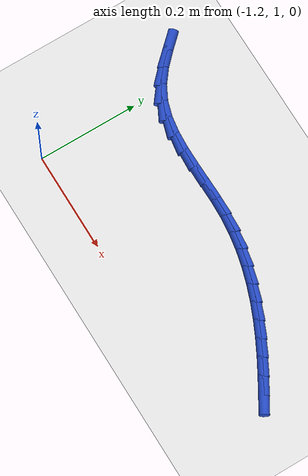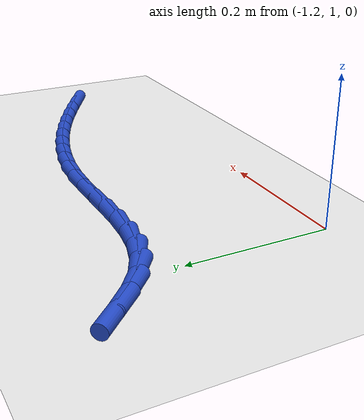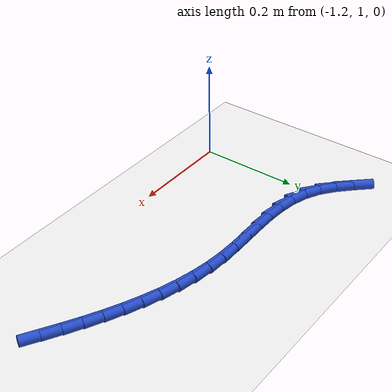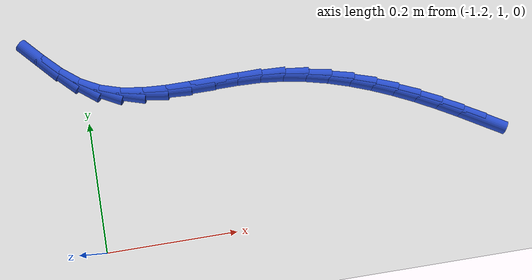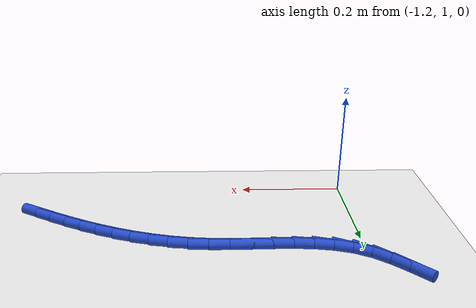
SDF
<sdf version="1.6">
 <world name="default">
  <model name="ground_plane">
   <static>1</static>
   <link name="link">
    <collision name="collision">
     <geometry><plane><normal>0 0 1</normal><size>100 100</size></plane></geometry>
     <surface><friction><ode><mu>100</mu><mu2>50</mu2></ode></friction></surface>
    </collision>
    <visual name="visual">
     <cast_shadows>0</cast_shadows>
     <geometry><plane><normal>0 0 1</normal><size>100 100</size></plane></geometry>
     <material>
      <script><uri>file://media/materials/scripts/gazebo.material</uri><name>Gazebo/WhiteGlow</name></script>
     </material>
    </visual>
   </link>
  </model>
  <model name="line">
   <link name="link_39">
    <pose>-0.6037062262293262 1.1102892742485995 0.01 0 1.57 -0.5329822296605902</pose>
    <collision name="collision">
     <geometry><cylinder><radius>0.01</radius><length>0.08</length></cylinder></geometry>
    </collision>
    <visual name="visual">
     <material>
      <script><name>Gazebo/Blue</name><uri>file://media/materials/scripts/gazebo.material</uri></script>
     </material>
     <geometry><cylinder><radius>0.01</radius><length>0.08</length></cylinder></geometry>
    </visual>
   </link>
   <link name="link_40">
    <pose>-0.6341459280985905 1.1282465694600792 0.01 0 1.57 -0.5097433400999187</pose>
    <collision name="collision">
     <geometry><cylinder><radius>0.01</radius><length>0.08</length></cylinder></geometry>
    </collision>
    <visual name="visual">
     <material>
      <script><name>Gazebo/Blue</name><uri>file://media/materials/scripts/gazebo.material</uri></script>
     </material>
     <geometry><cylinder><radius>0.01</radius><length>0.08</length></cylinder></geometry>
    </visual>
   </link>
   <link name="link_41">
    <pose>-0.6647988493821662 1.1453822206851383 0.01 0 1.57 -0.4802701674608907</pose>
    <collision name="collision">
     <geometry><cylinder><radius>0.01</radius><length>0.08</length></cylinder></geometry>
    </collision>
    <visual name="visual">
     <material>
      <script><name>Gazebo/Blue</name><uri>file://media/materials/scripts/gazebo.material</uri></script>
     </material>
     <geometry><cylinder><radius>0.01</radius><length>0.08</length></cylinder></geometry>
    </visual>
   </link>
   <link name="link_42">
    <pose>-0.6957480626921826 1.1615053459757465 0.01 0 1.57 -0.44445425658547955</pose>
    <collision name="collision">
     <geometry><cylinder><radius>0.01</radius><length>0.08</length></cylinder></geometry>
    </collision>
    <visual name="visual">
     <material>
      <script><name>Gazebo/Blue</name><uri>file://media/materials/scripts/gazebo.material</uri></script>
     </material>
     <geometry><cylinder><radius>0.01</radius><length>0.08</length></cylinder></geometry>
    </visual>
   </link>
   <link name="link_43">
    <pose>-0.7270766406407698 1.1764250633838707 0.01 0 1.57 -0.40225014596360037</pose>
    <collision name="collision">
     <geometry><cylinder><radius>0.01</radius><length>0.08</length></cylinder></geometry>
    </collision>
    <visual name="visual">
     <material>
      <script><name>Gazebo/Blue</name><uri>file://media/materials/scripts/gazebo.material</uri></script>
     </material>
     <geometry><cylinder><radius>0.01</radius><length>0.08</length></cylinder></geometry>
    </visual>
   </link>
   <link name="link_44">
    <pose>-0.758867655840057 1.18995049096148 0.01 0 1.57 -0.35371990406697174</pose>
    <collision name="collision">
     <geometry><cylinder><radius>0.01</radius><length>0.08</length></cylinder></geometry>
    </collision>
    <visual name="visual">
     <material>
      <script><name>Gazebo/Blue</name><uri>file://media/materials/scripts/gazebo.material</uri></script>
     </material>
     <geometry><cylinder><radius>0.01</radius><length>0.08</length></cylinder></geometry>
    </visual>
   </link>
   <link name="link_45">
    <pose>-0.7912041809021746 1.2018907467605422 0.01 0 1.57 -0.2990833196702616</pose>
    <collision name="collision">
     <geometry><cylinder><radius>0.01</radius><length>0.08</length></cylinder></geometry>
    </collision>
    <visual name="visual">
     <material>
      <script><name>Gazebo/Blue</name><uri>file://media/materials/scripts/gazebo.material</uri></script>
     </material>
     <geometry><cylinder><radius>0.01</radius><length>0.08</length></cylinder></geometry>
    </visual>
   </link>
   <link name="link_46">
    <pose>-0.8241692884392514 1.2120549488330252 0.01 0 1.57 -0.2387669150535141</pose>
    <collision name="collision">
     <geometry><cylinder><radius>0.01</radius><length>0.08</length></cylinder></geometry>
    </collision>
    <visual name="visual">
     <material>
      <script><name>Gazebo/Blue</name><uri>file://media/materials/scripts/gazebo.material</uri></script>
     </material>
     <geometry><cylinder><radius>0.01</radius><length>0.08</length></cylinder></geometry>
    </visual>
   </link>
   <link name="link_47">
    <pose>-0.8578460510634178 1.2202522152308977 0.01 0 1.57 -0.17344094599628823</pose>
    <collision name="collision">
     <geometry><cylinder><radius>0.01</radius><length>0.08</length></cylinder></geometry>
    </collision>
    <visual name="visual">
     <material>
      <script><name>Gazebo/Blue</name><uri>file://media/materials/scripts/gazebo.material</uri></script>
     </material>
     <geometry><cylinder><radius>0.01</radius><length>0.08</length></cylinder></geometry>
    </visual>
   </link>
   <link name="link_48">
    <pose>-0.8923175413868033 1.2262916640061274 0.01 0 1.57 -0.10403109041895171</pose>
    <collision name="collision">
     <geometry><cylinder><radius>0.01</radius><length>0.08</length></cylinder></geometry>
    </collision>
    <visual name="visual">
     <material>
      <script><name>Gazebo/Blue</name><uri>file://media/materials/scripts/gazebo.material</uri></script>
     </material>
     <geometry><cylinder><radius>0.01</radius><length>0.08</length></cylinder></geometry>
    </visual>
   </link>
   <link name="link_49">
    <pose>-0.9276668320215371 1.2299824132106827 0.01 0 1.57 -0.03492770932390305</pose>
    <collision name="collision">
     <geometry><cylinder><radius>0.01</radius><length>0.08</length></cylinder></geometry>
    </collision>
    <visual name="visual">
     <material>
      <script><name>Gazebo/Blue</name><uri>file://media/materials/scripts/gazebo.material</uri></script>
     </material>
     <geometry><cylinder><radius>0.01</radius><length>0.08</length></cylinder></geometry>
    </visual>
   </link>
   <link name="link_50">
    <pose>-0.9639287901547265 1.2312494756345558 0.01 0 1.57 0.00949308391064835</pose>
    <collision name="collision">
     <geometry><cylinder><radius>0.01</radius><length>0.08</length></cylinder></geometry>
    </collision>
    <visual name="visual">
     <material>
      <script><name>Gazebo/Blue</name><uri>file://media/materials/scripts/gazebo.material</uri></script>
     </material>
     <geometry><cylinder><radius>0.01</radius><length>0.08</length></cylinder></geometry>
    </visual>
   </link>
   <link name="link_51">
    <pose>-1.000771484897298 1.230899714335136 0.01 0 1.57 0.02042746529366963</pose>
    <collision name="collision">
     <geometry><cylinder><radius>0.01</radius><length>0.08</length></cylinder></geometry>
    </collision>
    <visual name="visual">
     <material>
      <script><name>Gazebo/Blue</name><uri>file://media/materials/scripts/gazebo.material</uri></script>
     </material>
     <geometry><cylinder><radius>0.01</radius><length>0.08</length></cylinder></geometry>
    </visual>
   </link>
   <link name="link_52">
    <pose>-1.0376943726680934 1.2301453683989096 0.01 0 1.57 -0.0015190542157227352</pose>
    <collision name="collision">
     <geometry><cylinder><radius>0.01</radius><length>0.08</length></cylinder></geometry>
    </collision>
    <visual name="visual">
     <material>
      <script><name>Gazebo/Blue</name><uri>file://media/materials/scripts/gazebo.material</uri></script>
     </material>
     <geometry><cylinder><radius>0.01</radius><length>0.08</length></cylinder></geometry>
    </visual>
   </link>
   <link name="link_53">
    <pose>-1.0741960199748943 1.2302008164227811 0.01 0 1.57 -0.05838440200083776</pose>
    <collision name="collision">
     <geometry><cylinder><radius>0.01</radius><length>0.08</length></cylinder></geometry>
    </collision>
    <visual name="visual">
     <material>
      <script><name>Gazebo/Blue</name><uri>file://media/materials/scripts/gazebo.material</uri></script>
     </material>
     <geometry><cylinder><radius>0.01</radius><length>0.08</length></cylinder></geometry>
    </visual>
   </link>
   <link name="link_54">
    <pose>-1.1097749933254841 1.2322804370036562 0.01 0 1.57 -0.15446721152338902</pose>
    <collision name="collision">
     <geometry><cylinder><radius>0.01</radius><length>0.08</length></cylinder></geometry>
    </collision>
    <visual name="visual">
     <material>
      <script><name>Gazebo/Blue</name><uri>file://media/materials/scripts/gazebo.material</uri></script>
     </material>
     <geometry><cylinder><radius>0.01</radius><length>0.08</length></cylinder></geometry>
    </visual>
   </link>
   <link name="link_55">
    <pose>-1.1439298592276441 1.2375986087384387 0.01 0 1.57 -0.2943664020281546</pose>
    <collision name="collision">
     <geometry><cylinder><radius>0.01</radius><length>0.08</length></cylinder></geometry>
    </collision>
    <visual name="visual">
     <material>
      <script><name>Gazebo/Blue</name><uri>file://media/materials/scripts/gazebo.material</uri></script>
     </material>
     <geometry><cylinder><radius>0.01</radius><length>0.08</length></cylinder></geometry>
    </visual>
   </link>
   <link name="link_56">
    <pose>-1.176159184189157 1.2473697102240342 0.01 0 1.57 -0.4778142915954791</pose>
    <collision name="collision">
     <geometry><cylinder><radius>0.01</radius><length>0.08</length></cylinder></geometry>
    </collision>
    <visual name="visual">
     <material>
      <script><name>Gazebo/Blue</name><uri>file://media/materials/scripts/gazebo.material</uri></script>
     </material>
     <geometry><cylinder><radius>0.01</radius><length>0.08</length></cylinder></geometry>
    </visual>
   </link>
   <link name="link_57">
    <pose>-1.2059635126294983 1.262803460992066 0.01 0 1.57 -0.6628788269033995</pose>
    <collision name="collision">
     <geometry><cylinder><radius>0.01</radius><length>0.08</length></cylinder></geometry>
    </collision>
    <visual name="visual">
     <material>
      <script><name>Gazebo/Blue</name><uri>file://media/materials/scripts/gazebo.material</uri></script>
     </material>
     <geometry><cylinder><radius>0.01</radius><length>0.08</length></cylinder></geometry>
    </visual>
   </link>
   <link name="link_58">
    <pose>-1.233264348280855 1.2841179908455744 0.01 0 1.57 -0.7763594942866026</pose>
    <collision name="collision">
     <geometry><cylinder><radius>0.01</radius><length>0.08</length></cylinder></geometry>
    </collision>
    <visual name="visual">
     <material>
      <script><name>Gazebo/Blue</name><uri>file://media/materials/scripts/gazebo.material</uri></script>
     </material>
     <geometry><cylinder><radius>0.01</radius><length>0.08</length></cylinder></geometry>
    </visual>
   </link>
   <link name="link_59">
    <pose>-1.2589232183705352 1.3093171594331292 0.01 0 1.57 -0.8197908009743567</pose>
    <collision name="collision">
     <geometry><cylinder><radius>0.01</radius><length>0.08</length></cylinder></geometry>
    </collision>
    <visual name="visual">
     <material>
      <script><name>Gazebo/Blue</name><uri>file://media/materials/scripts/gazebo.material</uri></script>
     </material>
     <geometry><cylinder><radius>0.01</radius><length>0.08</length></cylinder></geometry>
    </visual>
   </link>
  </model>
 </world>
</sdf>
